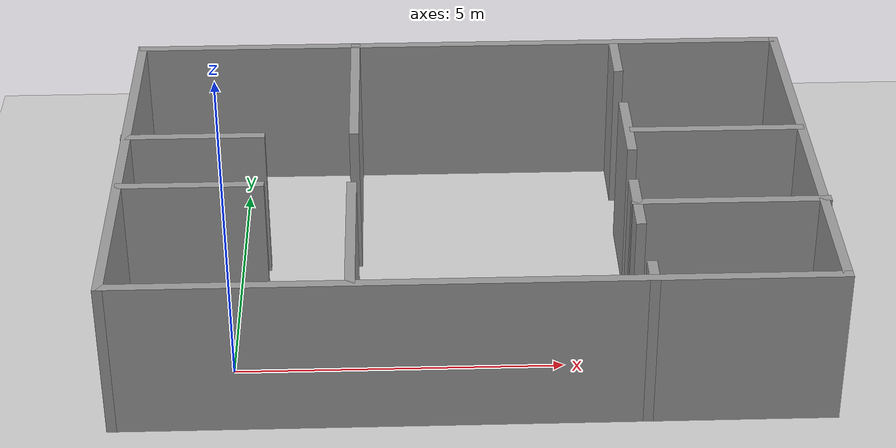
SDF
<sdf version="1.7">
 <world name="default">
  <light name="sun" type="directional">
   <pose>0 0 10 0 -0 0</pose>
   <diffuse>0.8 0.8 0.8 1</diffuse>
   <specular>0.2 0.2 0.2 1</specular>
   <attenuation>
    <range>1000</range>
    <constant>0.9</constant>
    <linear>0.01</linear>
    <quadratic>0.001</quadratic>
   </attenuation>
   <direction>-0.5 0.1 -0.9</direction>
   <spot><inner_angle>0</inner_angle><outer_angle>0</outer_angle><falloff>0</falloff></spot>
  </light>
  <model name="ground_plane">
   <static>1</static>
   <link name="link">
    <collision name="collision">
     <geometry><plane><normal>0 0 1</normal><size>100 100</size></plane></geometry>
     <surface>
      <contact><collide_bitmask>65535</collide_bitmask></contact>
      <friction><ode><mu>100</mu><mu2>50</mu2></ode></friction>
     </surface>
    </collision>
    <visual name="visual">
     <cast_shadows>0</cast_shadows>
     <geometry><plane><normal>0 0 1</normal><size>100 100</size></plane></geometry>
     <material>
      <script><uri>file://media/materials/scripts/gazebo.material</uri><name>Gazebo/Grey</name></script>
     </material>
    </visual>
   </link>
  </model>
  <gravity>0 0 -9.8</gravity>
  <magnetic_field>6e-06 2.3e-05 -4.2e-05</magnetic_field>
  <atmosphere type="adiabatic"/>
  <physics type="ode">
   <max_step_size>0.003</max_step_size>
   <real_time_factor>1</real_time_factor>
   <real_time_update_rate>1000</real_time_update_rate>
  </physics>
  <scene><ambient>0.4 0.4 0.4 1</ambient><background>0.7 0.7 0.7 1</background><shadows>1</shadows></scene>
  <spherical_coordinates>
   <surface_model>EARTH_WGS84</surface_model>
   <latitude_deg>0</latitude_deg>
   <longitude_deg>0</longitude_deg>
   <elevation>0</elevation>
   <heading_deg>0</heading_deg>
  </spherical_coordinates>
  <model name="ffas">
   <pose>3.60209 2.19523 0 0 -0 0</pose>
   <link name="Wall_0">
    <collision name="Wall_0_Collision">
     <geometry><box><size>10.75 0.15 2.5</size></box></geometry>
     <pose>0 0 1.25 0 -0 0</pose>
    </collision>
    <visual name="Wall_0_Visual">
     <pose>0 0 1.25 0 -0 0</pose>
     <geometry><box><size>10.75 0.15 2.5</size></box></geometry>
     <material>
      <script><uri>file://media/materials/scripts/gazebo.material</uri><name>Gazebo/Grey</name></script>
      <ambient>1 1 1 1</ambient>
     </material>
     <meta><layer>0</layer></meta>
    </visual>
    <pose>-0.013211 3.55093 0 0 -0 0</pose>
   </link>
   <link name="Wall_1">
    <collision name="Wall_1_Collision">
     <geometry><box><size>7.25 0.15 2.5</size></box></geometry>
     <pose>0 0 1.25 0 -0 0</pose>
    </collision>
    <visual name="Wall_1_Visual">
     <pose>0 0 1.25 0 -0 0</pose>
     <geometry><box><size>7.25 0.15 2.5</size></box></geometry>
     <material>
      <script><uri>file://media/materials/scripts/gazebo.material</uri><name>Gazebo/Grey</name></script>
      <ambient>1 1 1 1</ambient>
     </material>
     <meta><layer>0</layer></meta>
    </visual>
    <pose>5.28679 0.000934 0 0 -0 -1.5708</pose>
   </link>
   <link name="Wall_10">
    <collision name="Wall_10_Collision">
     <geometry><box><size>2.25 0.15 2.5</size></box></geometry>
     <pose>0 0 1.25 0 -0 0</pose>
    </collision>
    <visual name="Wall_10_Visual">
     <pose>0 0 1.25 0 -0 0</pose>
     <geometry><box><size>2.25 0.15 2.5</size></box></geometry>
     <material>
      <script><uri>file://media/materials/scripts/gazebo.material</uri><name>Gazebo/Grey</name></script>
      <ambient>1 1 1 1</ambient>
     </material>
     <meta><layer>0</layer></meta>
    </visual>
    <pose>-4.22173 -0.836655 0 0 -0 3.14159</pose>
   </link>
   <link name="Wall_12">
    <collision name="Wall_12_Collision">
     <geometry><box><size>2.25 0.15 2.5</size></box></geometry>
     <pose>0 0 1.25 0 -0 0</pose>
    </collision>
    <visual name="Wall_12_Visual">
     <pose>0 0 1.25 0 -0 0</pose>
     <geometry><box><size>2.25 0.15 2.5</size></box></geometry>
     <material>
      <script><uri>file://media/materials/scripts/gazebo.material</uri><name>Gazebo/Grey</name></script>
      <ambient>1 1 1 1</ambient>
     </material>
     <meta><layer>0</layer></meta>
    </visual>
    <pose>-4.27471 0.623385 0 0 -0 0</pose>
   </link>
   <link name="Wall_14">
    <collision name="Wall_14_Collision">
     <geometry><box><size>1 0.15 2.5</size></box></geometry>
     <pose>0 0 1.25 0 -0 0</pose>
    </collision>
    <visual name="Wall_14_Visual">
     <pose>0 0 1.25 0 -0 0</pose>
     <geometry><box><size>1 0.15 2.5</size></box></geometry>
     <material>
      <script><uri>file://media/materials/scripts/gazebo.material</uri><name>Gazebo/Grey</name></script>
      <ambient>1 1 1 1</ambient>
     </material>
     <meta><layer>0</layer></meta>
    </visual>
    <pose>2.57468 3.01078 0 0 -0 -1.5708</pose>
   </link>
   <link name="Wall_16">
    <collision name="Wall_16_Collision">
     <geometry><box><size>1.5 0.15 2.5</size></box></geometry>
     <pose>0 0 1.25 0 -0 0</pose>
    </collision>
    <visual name="Wall_16_Visual">
     <pose>0 0 1.25 0 -0 0</pose>
     <geometry><box><size>1.5 0.15 2.5</size></box></geometry>
     <material>
      <script><uri>file://media/materials/scripts/gazebo.material</uri><name>Gazebo/Grey</name></script>
      <ambient>1 1 1 1</ambient>
     </material>
     <meta><layer>0</layer></meta>
    </visual>
    <pose>2.55719 0.731928 0 0 -0 -1.5708</pose>
   </link>
   <link name="Wall_18">
    <collision name="Wall_18_Collision">
     <geometry><box><size>2.75 0.15 2.5</size></box></geometry>
     <pose>0 0 1.25 0 -0 0</pose>
    </collision>
    <visual name="Wall_18_Visual">
     <pose>0 0 1.25 0 -0 0</pose>
     <geometry><box><size>2.75 0.15 2.5</size></box></geometry>
     <material>
      <script><uri>file://media/materials/scripts/gazebo.material</uri><name>Gazebo/Grey</name></script>
      <ambient>1 1 1 1</ambient>
     </material>
     <meta><layer>0</layer></meta>
    </visual>
    <pose>3.95065 0.602385 0 0 -0 3.14159</pose>
   </link>
   <link name="Wall_2">
    <collision name="Wall_2_Collision">
     <geometry><box><size>10.75 0.15 2.5</size></box></geometry>
     <pose>0 0 1.25 0 -0 0</pose>
    </collision>
    <visual name="Wall_2_Visual">
     <pose>0 0 1.25 0 -0 0</pose>
     <geometry><box><size>10.75 0.15 2.5</size></box></geometry>
     <material>
      <script><uri>file://media/materials/scripts/gazebo.material</uri><name>Gazebo/Grey</name></script>
      <ambient>1 1 1 1</ambient>
     </material>
     <meta><layer>0</layer></meta>
    </visual>
    <pose>-0.013211 -3.54907 0 0 -0 3.14159</pose>
   </link>
   <link name="Wall_20">
    <collision name="Wall_20_Collision">
     <geometry><box><size>1.25 0.15 2.5</size></box></geometry>
     <pose>0 0 1.25 0 -0 0</pose>
    </collision>
    <visual name="Wall_20_Visual">
     <pose>0 0 1.25 0 -0 0</pose>
     <geometry><box><size>1.25 0.15 2.5</size></box></geometry>
     <material>
      <script><uri>file://media/materials/scripts/gazebo.material</uri><name>Gazebo/Grey</name></script>
      <ambient>1 1 1 1</ambient>
     </material>
     <meta><layer>0</layer></meta>
    </visual>
    <pose>2.48723 -1.52172 0 0 -0 -1.5708</pose>
   </link>
   <link name="Wall_22">
    <collision name="Wall_22_Collision">
     <geometry><box><size>3 0.15 2.5</size></box></geometry>
     <pose>0 0 1.25 0 -0 0</pose>
    </collision>
    <visual name="Wall_22_Visual">
     <pose>0 0 1.25 0 -0 0</pose>
     <geometry><box><size>3 0.15 2.5</size></box></geometry>
     <material>
      <script><uri>file://media/materials/scripts/gazebo.material</uri><name>Gazebo/Grey</name></script>
      <ambient>1 1 1 1</ambient>
     </material>
     <meta><layer>0</layer></meta>
    </visual>
    <pose>3.89972 -1.52391 0 0 -0 0</pose>
   </link>
   <link name="Wall_24">
    <collision name="Wall_24_Collision">
     <geometry><box><size>0.5 0.15 2.5</size></box></geometry>
     <pose>0 0 1.25 0 -0 0</pose>
    </collision>
    <visual name="Wall_24_Visual">
     <pose>0 0 1.25 0 -0 0</pose>
     <geometry><box><size>0.5 0.15 2.5</size></box></geometry>
     <material>
      <script><uri>file://media/materials/scripts/gazebo.material</uri><name>Gazebo/Grey</name></script>
      <ambient>1 1 1 1</ambient>
     </material>
     <meta><layer>0</layer></meta>
    </visual>
    <pose>2.53924 -3.37594 0 0 -0 1.5708</pose>
   </link>
   <link name="Wall_3">
    <collision name="Wall_3_Collision">
     <geometry><box><size>7.25 0.15 2.5</size></box></geometry>
     <pose>0 0 1.25 0 -0 0</pose>
    </collision>
    <visual name="Wall_3_Visual">
     <pose>0 0 1.25 0 -0 0</pose>
     <geometry><box><size>7.25 0.15 2.5</size></box></geometry>
     <material>
      <script><uri>file://media/materials/scripts/gazebo.material</uri><name>Gazebo/Grey</name></script>
      <ambient>1 1 1 1</ambient>
     </material>
     <meta><layer>0</layer></meta>
    </visual>
    <pose>-5.31321 0.000934 0 0 -0 1.5708</pose>
   </link>
   <link name="Wall_5">
    <collision name="Wall_5_Collision">
     <geometry><box><size>3 0.15 2.5</size></box></geometry>
     <pose>0 0 1.25 0 -0 0</pose>
    </collision>
    <visual name="Wall_5_Visual">
     <pose>0 0 1.25 0 -0 0</pose>
     <geometry><box><size>3 0.15 2.5</size></box></geometry>
     <material>
      <script><uri>file://media/materials/scripts/gazebo.material</uri><name>Gazebo/Grey</name></script>
      <ambient>1 1 1 1</ambient>
     </material>
     <meta><layer>0</layer></meta>
    </visual>
    <pose>-1.75519 2.114 0 0 -0 -1.5708</pose>
   </link>
   <link name="Wall_7">
    <collision name="Wall_7_Collision">
     <geometry><box><size>2.75 0.15 2.5</size></box></geometry>
     <pose>0 0 1.25 0 -0 0</pose>
    </collision>
    <visual name="Wall_7_Visual">
     <pose>0 0 1.25 0 -0 0</pose>
     <geometry><box><size>2.75 0.15 2.5</size></box></geometry>
     <material>
      <script><uri>file://media/materials/scripts/gazebo.material</uri><name>Gazebo/Grey</name></script>
      <ambient>1 1 1 1</ambient>
     </material>
     <meta><layer>0</layer></meta>
    </visual>
    <pose>-1.7753 -2.20075 0 0 -0 1.5708</pose>
   </link>
   <static>1</static>
  </model>
 </world>
</sdf>
